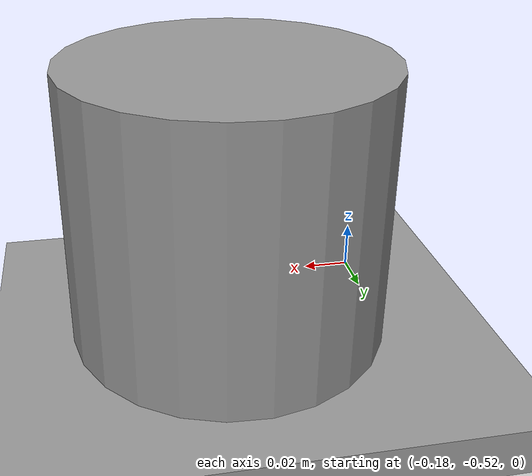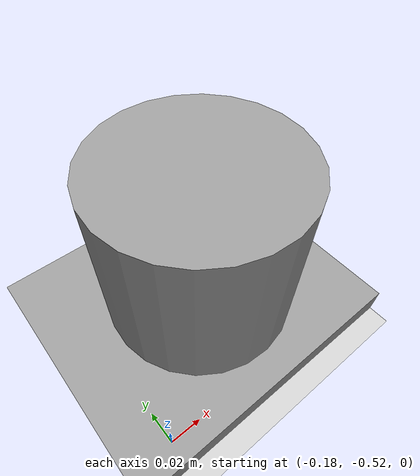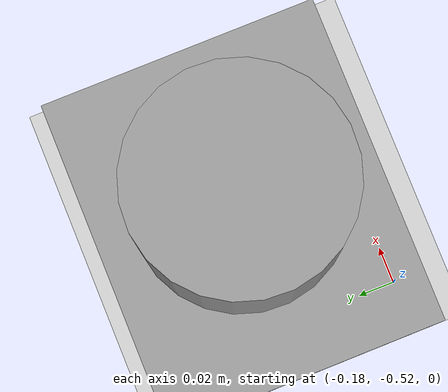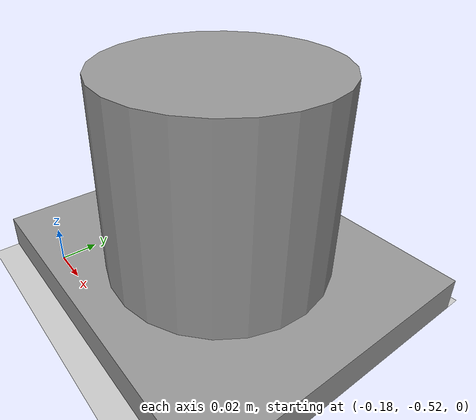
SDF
<sdf version="1.7">
 <world name="default">
  <plugin name="ros_link_attacher_plugin" filename="libgazebo_ros_link_attacher.so"/>
  <light name="sun" type="directional">
   <pose>0 0 10 0 -0 0</pose>
   <diffuse>0.8 0.8 0.8 1</diffuse>
   <specular>0.2 0.2 0.2 1</specular>
   <attenuation>
    <range>1000</range>
    <constant>0.9</constant>
    <linear>0.01</linear>
    <quadratic>0.001</quadratic>
   </attenuation>
   <direction>-0.5 0.1 -0.9</direction>
   <spot><inner_angle>0</inner_angle><outer_angle>0</outer_angle><falloff>0</falloff></spot>
  </light>
  <model name="ground_plane">
   <static>1</static>
   <link name="link">
    <collision name="collision">
     <geometry><plane><normal>0 0 1</normal><size>100 100</size></plane></geometry>
     <surface>
      <contact><collide_bitmask>65535</collide_bitmask></contact>
      <friction><ode><mu>100</mu><mu2>50</mu2></ode></friction>
     </surface>
    </collision>
    <visual name="visual">
     <cast_shadows>0</cast_shadows>
     <geometry><plane><normal>0 0 1</normal><size>100 100</size></plane></geometry>
     <material>
      <script><uri>file://media/materials/scripts/gazebo.material</uri><name>Gazebo/Grey</name></script>
     </material>
    </visual>
   </link>
  </model>
  <gravity>0 0 -9.8</gravity>
  <magnetic_field>6e-06 2.3e-05 -4.2e-05</magnetic_field>
  <atmosphere type="adiabatic"/>
  <physics type="ode">
   <max_step_size>0.001</max_step_size>
   <real_time_factor>1</real_time_factor>
   <real_time_update_rate>1000</real_time_update_rate>
  </physics>
  <scene><ambient>0.4 0.4 0.4 1</ambient><background>0.7 0.7 0.7 1</background><shadows>1</shadows></scene>
  <spherical_coordinates>
   <surface_model>EARTH_WGS84</surface_model>
   <latitude_deg>0</latitude_deg>
   <longitude_deg>0</longitude_deg>
   <elevation>0</elevation>
   <heading_deg>0</heading_deg>
  </spherical_coordinates>
  <model name="unit_cylinder">
   <pose>-0.11059 -0.458217 0.070389 2.1e-05 -2.9e-05 -3.06479</pose>
   <link name="link">
    <inertial>
     <mass>1</mass>
     <inertia><ixx>0.145833</ixx><ixy>0</ixy><ixz>0</ixz><iyy>0.145833</iyy><iyz>0</iyz><izz>0.125</izz></inertia>
    </inertial>
    <collision name="collision">
     <geometry><cylinder><radius>0.0599445</radius><length>0.104559</length></cylinder></geometry>
    </collision>
    <visual name="visual">
     <geometry><cylinder><radius>0.0599445</radius><length>0.104559</length></cylinder></geometry>
     <material>
      <script><name>Gazebo/Grey</name><uri>file://media/materials/scripts/gazebo.material</uri></script>
     </material>
    </visual>
   </link>
  </model>
  <model name="unit_box">
   <pose>-0.157619 -0.456914 0.008976 -3e-06 1.6e-05 -4.5e-05</pose>
   <link name="link">
    <inertial>
     <mass>1</mass>
     <inertia>
      <ixx>0.166667</ixx>
      <ixy>0</ixy>
      <ixz>0</ixz>
      <iyy>0.166667</iyy>
      <iyz>0</iyz>
      <izz>0.166667</izz>
     </inertia>
    </inertial>
    <collision name="collision">
     <geometry><box><size>0.524864 0.158873 0.0182647</size></box></geometry>
    </collision>
    <visual name="visual">
     <geometry><box><size>0.524864 0.158873 0.0182647</size></box></geometry>
     <material>
      <script><name>Gazebo/Grey</name><uri>file://media/materials/scripts/gazebo.material</uri></script>
     </material>
    </visual>
   </link>
  </model>
 </world>
</sdf>
